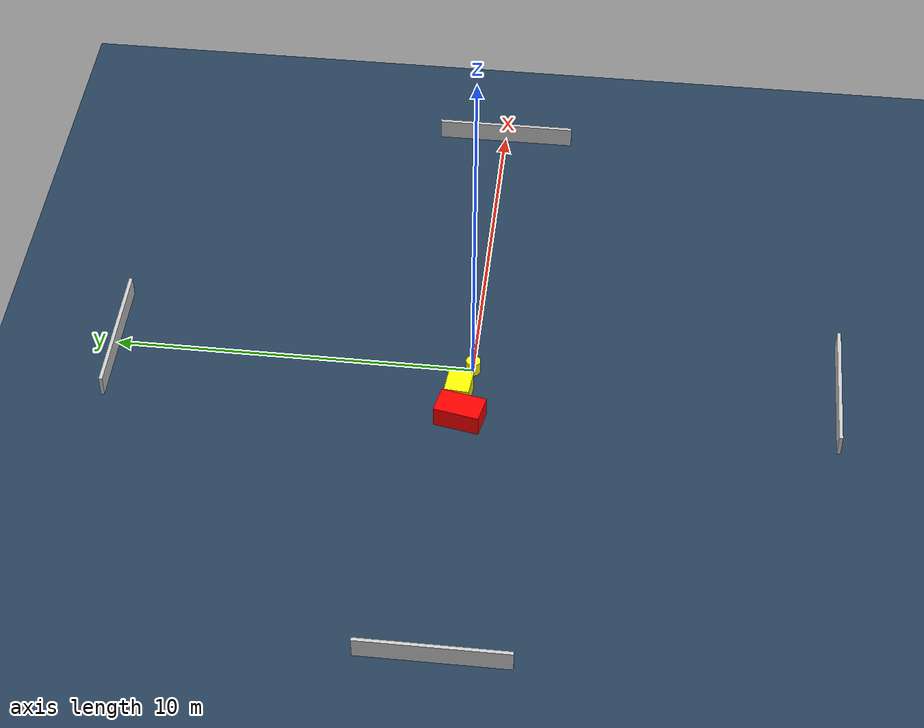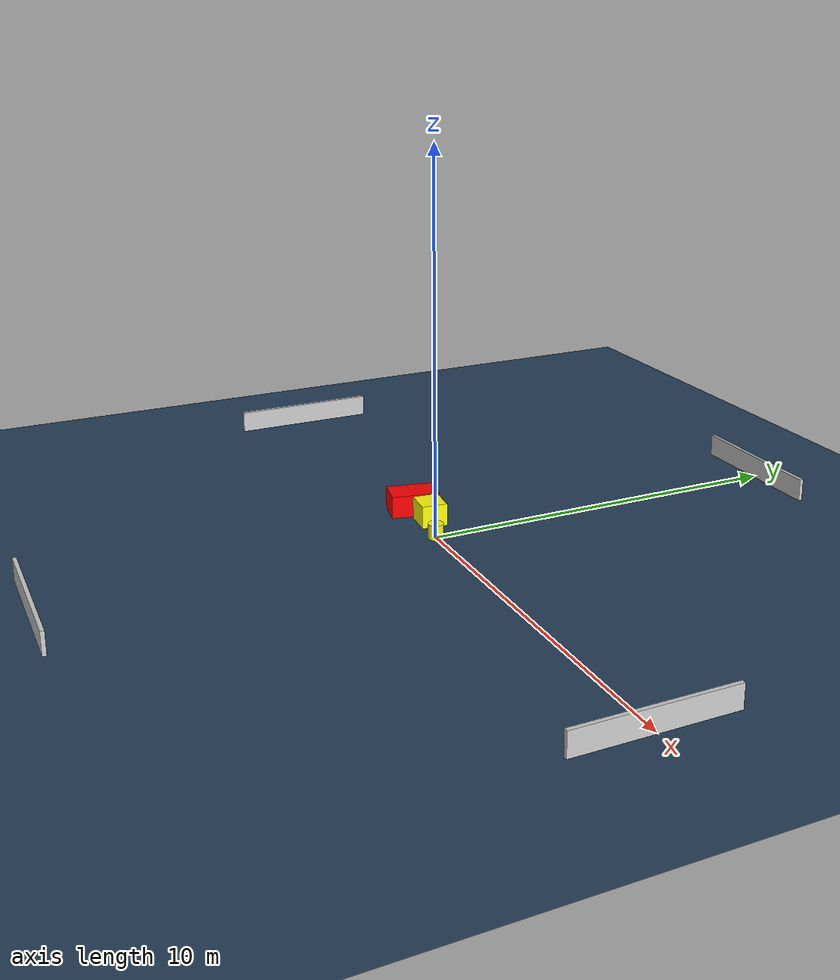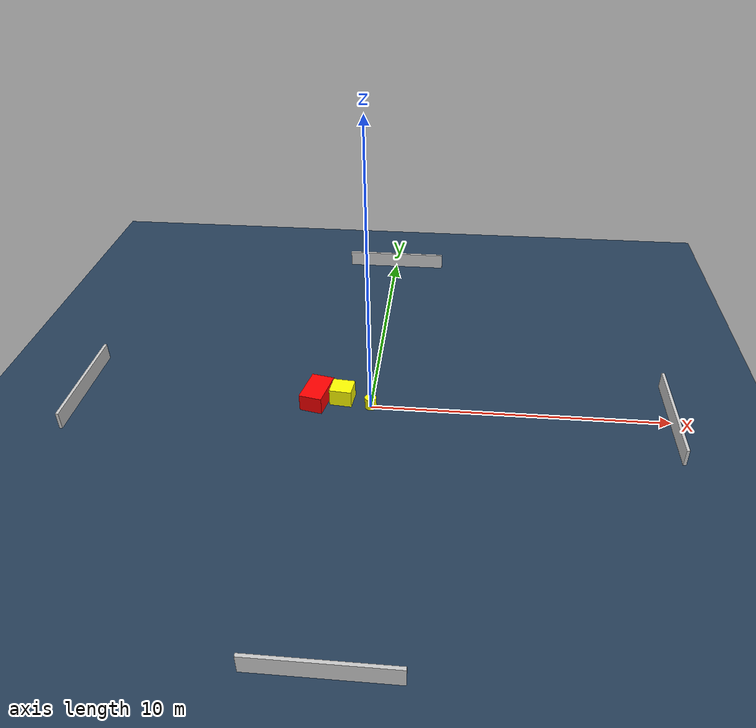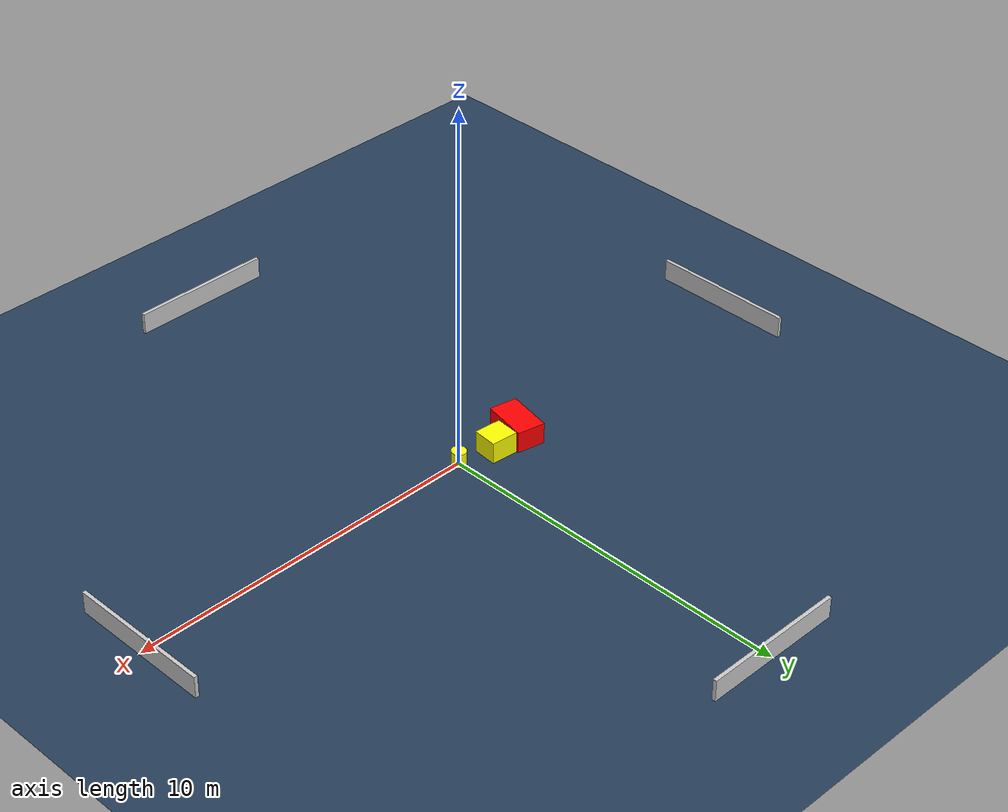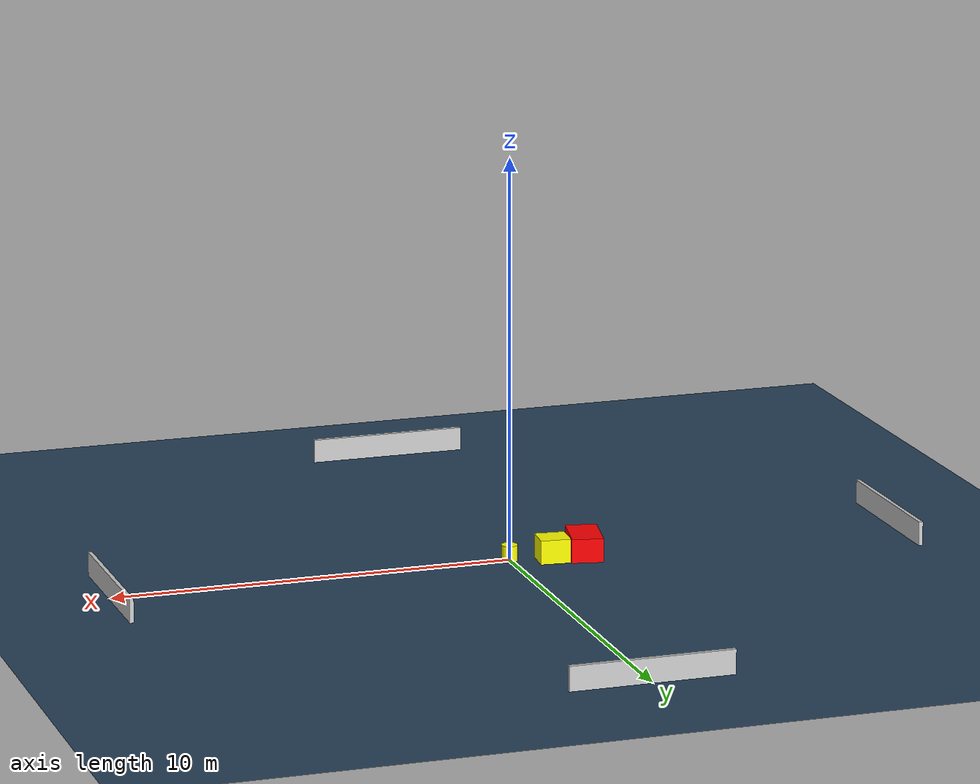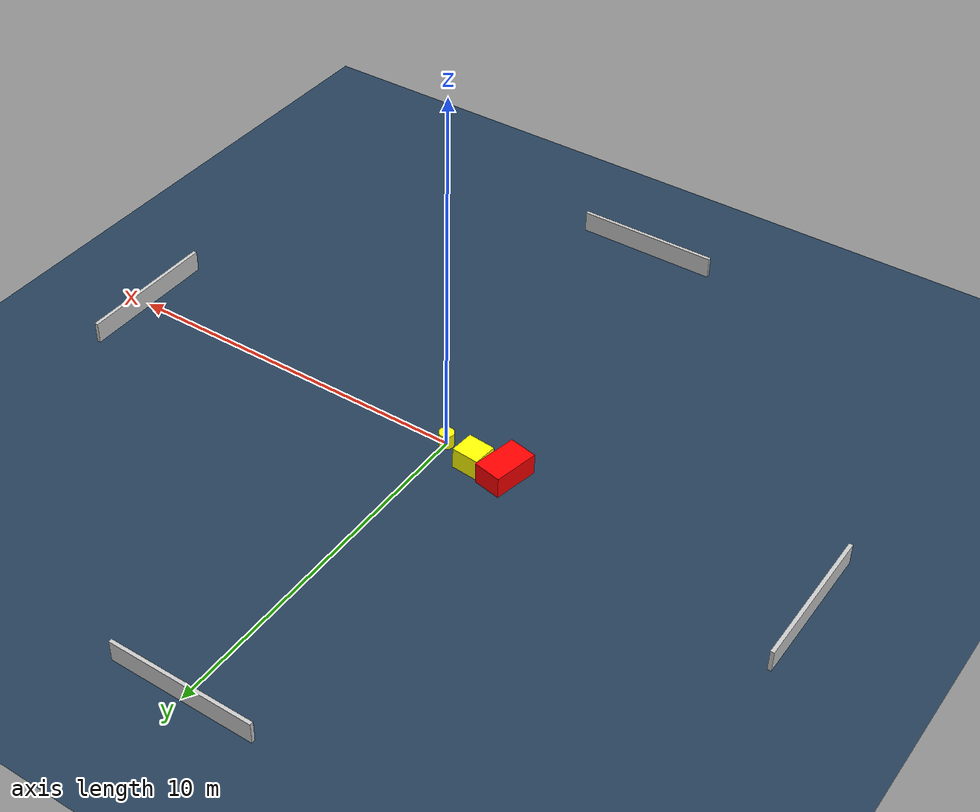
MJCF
<?xml version="1.0" ?>
<mujoco model="generated_environment">
  <option timestep="0.01" integrator="RK4" cone="elliptic"/>
  <default>
    <geom density="1"/>
  </default>
  <asset>
    <texture builtin="gradient" height="3072" name="skybox" rgb1="0.3 0.5 0.7" rgb2="0 0 0" type="skybox" width="512"/>
    <texture builtin="checker" height="300" name="groundplane" rgb1="0.2 0.3 0.4" rgb2="0.1 0.2 0.3" type="2d" width="300"/>
    <material name="groundplane" reflectance="0.2" texrepeat="5 5" texture="groundplane"/>
  </asset>
  <worldbody>
    <light dir="0 0 -1" directional="true" pos="0 0 1.5"/>
    <geom condim="3" friction="0.5 0.005 0.001" material="groundplane" name="floor" pos="0 0 0" size="0 0 0.05" type="plane"/>
    <body name="walls">
      <geom name="wall_1" condim="4" pos="-10.0 0.0 0.3" rgba="0.800000011920929 0.800000011920929 0.800000011920929 1.0" size="0.05 2.0 0.3" type="box"/>
      <geom name="wall_2" condim="4" pos="10.0 0.0 0.3" rgba="0.800000011920929 0.800000011920929 0.800000011920929 1.0" size="0.05 2.0 0.3" type="box"/>
      <geom name="wall_3" condim="4" pos="0.0 -10.0 0.3" rgba="0.800000011920929 0.800000011920929 0.800000011920929 1.0" size="2.0 0.05 0.3" type="box"/>
      <geom name="wall_4" condim="4" pos="0.0 10.0 0.3" rgba="0.800000011920929 0.800000011920929 0.800000011920929 1.0" size="2.0 0.05 0.3" type="box"/>
    </body>
    <body name="robot">
      <joint name="joint_x" type="slide" pos="0 0 0" axis="1 0 0"/>
      <joint name="joint_y" type="slide" pos="0 0 0" axis="0 1 0"/>
      <geom name="robot" type="cylinder" pos="0.0 0.0 0.2" size="0.2 0.2 0.0" mass="5.0" friction="1.0 0.005 0.0001" condim="4" rgba="1.0 1.0 0.0 1.0"/>
    </body>
    <body name="obstacle_1_movable">
      <geom name="obstacle_1_movable" condim="4" pos="-1.0045726838542726 0.2970370956862809 0.3" euler="0 0 354.95343387750387" friction="0.0 0.005 0.001" rgba="1.0 1.0 0.0 1.0" size="0.37848671868039313 0.3400823383474367 0.3" type="box" mass="0.1"/>
      <joint type="free"/>
    </body>
    <body name="obstacle_2_static">
      <geom name="obstacle_2_static" condim="4" pos="-1.860838427541704 0.18084159856271118 0.3" euler="0 0 348.6050150164358" friction="0.0 0.005 0.001" rgba="1.0 0.0 0.0 1.0" size="0.39139599924442503 0.6352843002285622 0.3" type="box"/>
    </body>
  </worldbody>
  <actuator>
    <motor name="actuator_x" joint="joint_x" gear="1" ctrlrange="-1 1"/>
    <motor name="actuator_y" joint="joint_y" gear="1" ctrlrange="-1 1"/>
  </actuator>
</mujoco>
